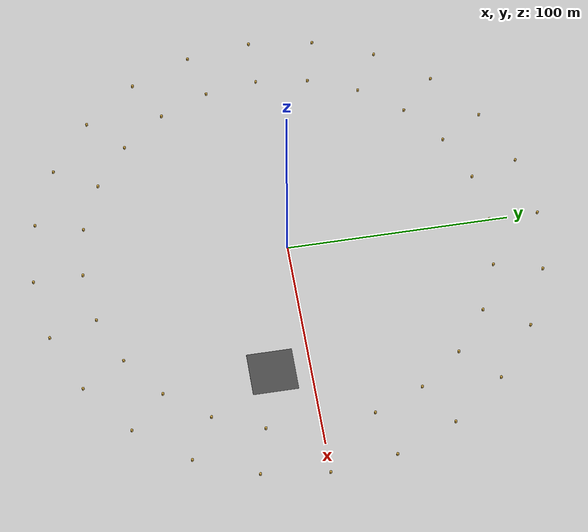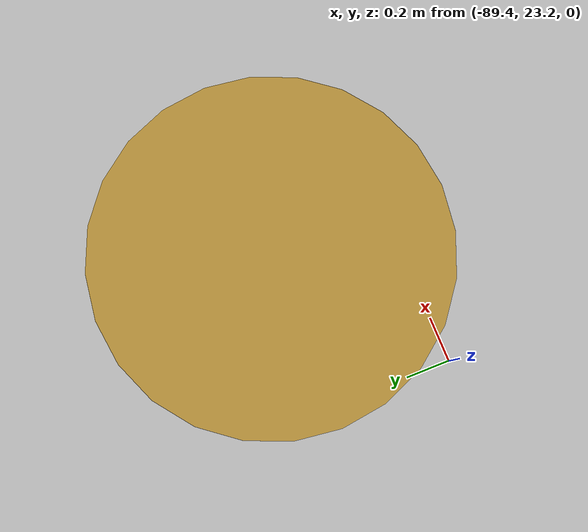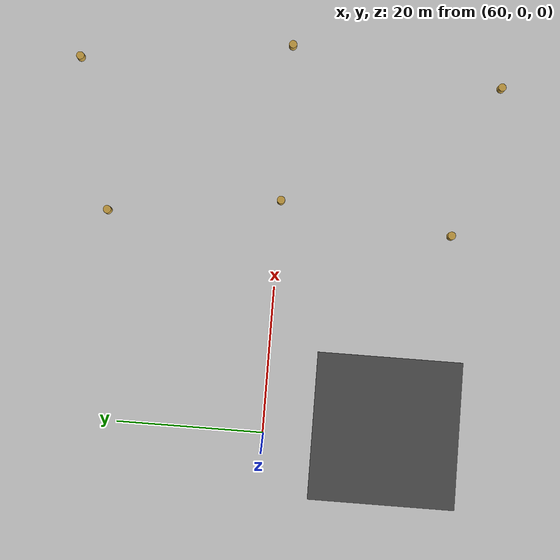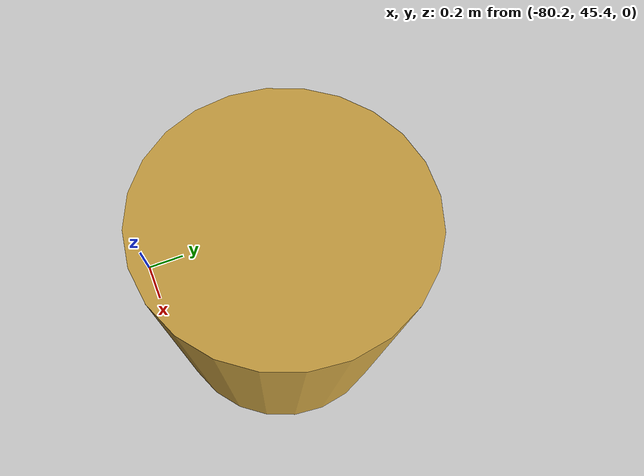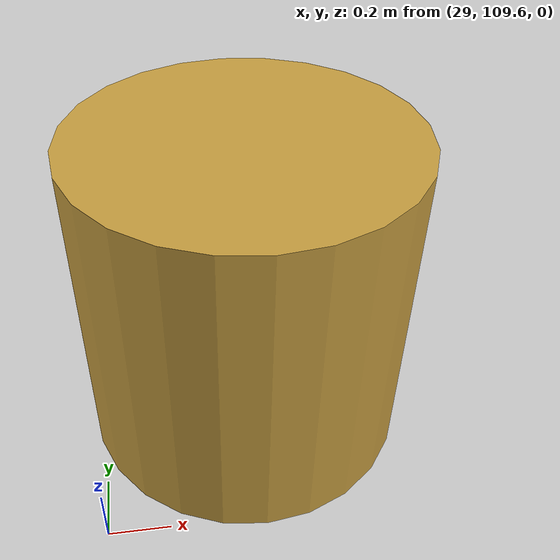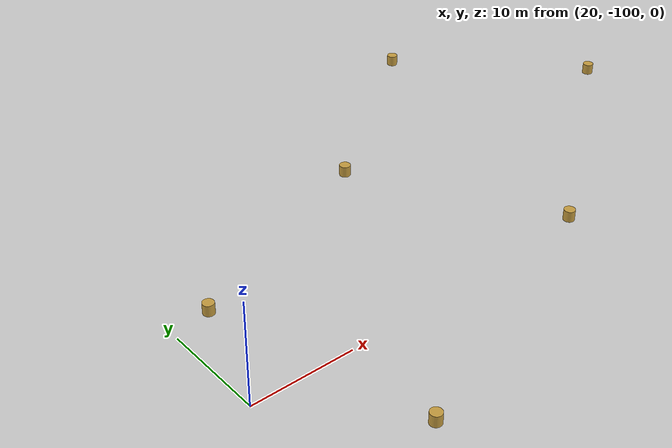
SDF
<sdf version="1.6">
 <world name="default">
  <scene>
   <ambient>0.45 0.45 0.50 1</ambient>
   <background>0.55 0.78 0.98 1</background>
   <shadows>true</shadows>
   <sky>
    <clouds>
     <speed>4</speed>
     <direction>1.2</direction>
     <humidity>0.45</humidity>
     <mean_size>0.55</mean_size>
     <ambient>0.85 0.85 0.85 1</ambient>
    </clouds>
   </sky>
  </scene>
  <light name="sun" type="directional">
   <pose>0 0 50 0 0 0</pose>
   <diffuse>1.00 0.93 0.80 1</diffuse>
   <specular>0.45 0.45 0.40 1</specular>
   <attenuation>
    <range>1000</range>
    <constant>0.9</constant>
    <linear>0.01</linear>
    <quadratic>0.001</quadratic>
   </attenuation>
   <direction>-0.45 0.25 -0.85</direction>
  </light>
  <include><uri>model://ground_plane</uri></include>
  <model name="haybale_in_00">
   <static>true</static>
   <pose>92.00 0.00 0.55 0 0 0</pose>
   <link name="link">
    <collision name="col">
     <geometry><cylinder><radius>0.55</radius><length>1.1</length></cylinder></geometry>
    </collision>
    <visual name="vis">
     <geometry><cylinder><radius>0.55</radius><length>1.1</length></cylinder></geometry>
     <material>
      <ambient>0.45 0.35 0.12 1</ambient>
      <diffuse>0.78 0.62 0.25 1</diffuse>
      <specular>0.1 0.1 0.05 1</specular>
     </material>
    </visual>
   </link>
  </model>
  <model name="haybale_out_00">
   <static>true</static>
   <pose>114.00 0.00 0.55 0 0 0</pose>
   <link name="link">
    <collision name="col">
     <geometry><cylinder><radius>0.55</radius><length>1.1</length></cylinder></geometry>
    </collision>
    <visual name="vis">
     <geometry><cylinder><radius>0.55</radius><length>1.1</length></cylinder></geometry>
     <material>
      <ambient>0.45 0.35 0.12 1</ambient>
      <diffuse>0.78 0.62 0.25 1</diffuse>
      <specular>0.1 0.1 0.05 1</specular>
     </material>
    </visual>
   </link>
  </model>
  <model name="haybale_in_01">
   <static>true</static>
   <pose>88.87 23.81 0.55 0 0 0</pose>
   <link name="link">
    <collision name="col">
     <geometry><cylinder><radius>0.55</radius><length>1.1</length></cylinder></geometry>
    </collision>
    <visual name="vis">
     <geometry><cylinder><radius>0.55</radius><length>1.1</length></cylinder></geometry>
     <material>
      <ambient>0.45 0.35 0.12 1</ambient>
      <diffuse>0.78 0.62 0.25 1</diffuse>
      <specular>0.1 0.1 0.05 1</specular>
     </material>
    </visual>
   </link>
  </model>
  <model name="haybale_out_01">
   <static>true</static>
   <pose>110.12 29.51 0.55 0 0 0</pose>
   <link name="link">
    <collision name="col">
     <geometry><cylinder><radius>0.55</radius><length>1.1</length></cylinder></geometry>
    </collision>
    <visual name="vis">
     <geometry><cylinder><radius>0.55</radius><length>1.1</length></cylinder></geometry>
     <material>
      <ambient>0.45 0.35 0.12 1</ambient>
      <diffuse>0.78 0.62 0.25 1</diffuse>
      <specular>0.1 0.1 0.05 1</specular>
     </material>
    </visual>
   </link>
  </model>
  <model name="haybale_in_02">
   <static>true</static>
   <pose>79.67 46.00 0.55 0 0 0</pose>
   <link name="link">
    <collision name="col">
     <geometry><cylinder><radius>0.55</radius><length>1.1</length></cylinder></geometry>
    </collision>
    <visual name="vis">
     <geometry><cylinder><radius>0.55</radius><length>1.1</length></cylinder></geometry>
     <material>
      <ambient>0.45 0.35 0.12 1</ambient>
      <diffuse>0.78 0.62 0.25 1</diffuse>
      <specular>0.1 0.1 0.05 1</specular>
     </material>
    </visual>
   </link>
  </model>
  <model name="haybale_out_02">
   <static>true</static>
   <pose>98.73 57.00 0.55 0 0 0</pose>
   <link name="link">
    <collision name="col">
     <geometry><cylinder><radius>0.55</radius><length>1.1</length></cylinder></geometry>
    </collision>
    <visual name="vis">
     <geometry><cylinder><radius>0.55</radius><length>1.1</length></cylinder></geometry>
     <material>
      <ambient>0.45 0.35 0.12 1</ambient>
      <diffuse>0.78 0.62 0.25 1</diffuse>
      <specular>0.1 0.1 0.05 1</specular>
     </material>
    </visual>
   </link>
  </model>
  <model name="haybale_in_03">
   <static>true</static>
   <pose>65.05 65.05 0.55 0 0 0</pose>
   <link name="link">
    <collision name="col">
     <geometry><cylinder><radius>0.55</radius><length>1.1</length></cylinder></geometry>
    </collision>
    <visual name="vis">
     <geometry><cylinder><radius>0.55</radius><length>1.1</length></cylinder></geometry>
     <material>
      <ambient>0.45 0.35 0.12 1</ambient>
      <diffuse>0.78 0.62 0.25 1</diffuse>
      <specular>0.1 0.1 0.05 1</specular>
     </material>
    </visual>
   </link>
  </model>
  <model name="haybale_out_03">
   <static>true</static>
   <pose>80.61 80.61 0.55 0 0 0</pose>
   <link name="link">
    <collision name="col">
     <geometry><cylinder><radius>0.55</radius><length>1.1</length></cylinder></geometry>
    </collision>
    <visual name="vis">
     <geometry><cylinder><radius>0.55</radius><length>1.1</length></cylinder></geometry>
     <material>
      <ambient>0.45 0.35 0.12 1</ambient>
      <diffuse>0.78 0.62 0.25 1</diffuse>
      <specular>0.1 0.1 0.05 1</specular>
     </material>
    </visual>
   </link>
  </model>
  <model name="haybale_in_04">
   <static>true</static>
   <pose>46.00 79.67 0.55 0 0 0</pose>
   <link name="link">
    <collision name="col">
     <geometry><cylinder><radius>0.55</radius><length>1.1</length></cylinder></geometry>
    </collision>
    <visual name="vis">
     <geometry><cylinder><radius>0.55</radius><length>1.1</length></cylinder></geometry>
     <material>
      <ambient>0.45 0.35 0.12 1</ambient>
      <diffuse>0.78 0.62 0.25 1</diffuse>
      <specular>0.1 0.1 0.05 1</specular>
     </material>
    </visual>
   </link>
  </model>
  <model name="haybale_out_04">
   <static>true</static>
   <pose>57.00 98.73 0.55 0 0 0</pose>
   <link name="link">
    <collision name="col">
     <geometry><cylinder><radius>0.55</radius><length>1.1</length></cylinder></geometry>
    </collision>
    <visual name="vis">
     <geometry><cylinder><radius>0.55</radius><length>1.1</length></cylinder></geometry>
     <material>
      <ambient>0.45 0.35 0.12 1</ambient>
      <diffuse>0.78 0.62 0.25 1</diffuse>
      <specular>0.1 0.1 0.05 1</specular>
     </material>
    </visual>
   </link>
  </model>
  <model name="haybale_in_05">
   <static>true</static>
   <pose>23.81 88.87 0.55 0 0 0</pose>
   <link name="link">
    <collision name="col">
     <geometry><cylinder><radius>0.55</radius><length>1.1</length></cylinder></geometry>
    </collision>
    <visual name="vis">
     <geometry><cylinder><radius>0.55</radius><length>1.1</length></cylinder></geometry>
     <material>
      <ambient>0.45 0.35 0.12 1</ambient>
      <diffuse>0.78 0.62 0.25 1</diffuse>
      <specular>0.1 0.1 0.05 1</specular>
     </material>
    </visual>
   </link>
  </model>
  <model name="haybale_out_05">
   <static>true</static>
   <pose>29.51 110.12 0.55 0 0 0</pose>
   <link name="link">
    <collision name="col">
     <geometry><cylinder><radius>0.55</radius><length>1.1</length></cylinder></geometry>
    </collision>
    <visual name="vis">
     <geometry><cylinder><radius>0.55</radius><length>1.1</length></cylinder></geometry>
     <material>
      <ambient>0.45 0.35 0.12 1</ambient>
      <diffuse>0.78 0.62 0.25 1</diffuse>
      <specular>0.1 0.1 0.05 1</specular>
     </material>
    </visual>
   </link>
  </model>
  <model name="haybale_in_06">
   <static>true</static>
   <pose>0.00 92.00 0.55 0 0 0</pose>
   <link name="link">
    <collision name="col">
     <geometry><cylinder><radius>0.55</radius><length>1.1</length></cylinder></geometry>
    </collision>
    <visual name="vis">
     <geometry><cylinder><radius>0.55</radius><length>1.1</length></cylinder></geometry>
     <material>
      <ambient>0.45 0.35 0.12 1</ambient>
      <diffuse>0.78 0.62 0.25 1</diffuse>
      <specular>0.1 0.1 0.05 1</specular>
     </material>
    </visual>
   </link>
  </model>
  <model name="haybale_out_06">
   <static>true</static>
   <pose>0.00 114.00 0.55 0 0 0</pose>
   <link name="link">
    <collision name="col">
     <geometry><cylinder><radius>0.55</radius><length>1.1</length></cylinder></geometry>
    </collision>
    <visual name="vis">
     <geometry><cylinder><radius>0.55</radius><length>1.1</length></cylinder></geometry>
     <material>
      <ambient>0.45 0.35 0.12 1</ambient>
      <diffuse>0.78 0.62 0.25 1</diffuse>
      <specular>0.1 0.1 0.05 1</specular>
     </material>
    </visual>
   </link>
  </model>
  <model name="haybale_in_07">
   <static>true</static>
   <pose>-23.81 88.87 0.55 0 0 0</pose>
   <link name="link">
    <collision name="col">
     <geometry><cylinder><radius>0.55</radius><length>1.1</length></cylinder></geometry>
    </collision>
    <visual name="vis">
     <geometry><cylinder><radius>0.55</radius><length>1.1</length></cylinder></geometry>
     <material>
      <ambient>0.45 0.35 0.12 1</ambient>
      <diffuse>0.78 0.62 0.25 1</diffuse>
      <specular>0.1 0.1 0.05 1</specular>
     </material>
    </visual>
   </link>
  </model>
  <model name="haybale_out_07">
   <static>true</static>
   <pose>-29.51 110.12 0.55 0 0 0</pose>
   <link name="link">
    <collision name="col">
     <geometry><cylinder><radius>0.55</radius><length>1.1</length></cylinder></geometry>
    </collision>
    <visual name="vis">
     <geometry><cylinder><radius>0.55</radius><length>1.1</length></cylinder></geometry>
     <material>
      <ambient>0.45 0.35 0.12 1</ambient>
      <diffuse>0.78 0.62 0.25 1</diffuse>
      <specular>0.1 0.1 0.05 1</specular>
     </material>
    </visual>
   </link>
  </model>
  <model name="haybale_in_08">
   <static>true</static>
   <pose>-46.00 79.67 0.55 0 0 0</pose>
   <link name="link">
    <collision name="col">
     <geometry><cylinder><radius>0.55</radius><length>1.1</length></cylinder></geometry>
    </collision>
    <visual name="vis">
     <geometry><cylinder><radius>0.55</radius><length>1.1</length></cylinder></geometry>
     <material>
      <ambient>0.45 0.35 0.12 1</ambient>
      <diffuse>0.78 0.62 0.25 1</diffuse>
      <specular>0.1 0.1 0.05 1</specular>
     </material>
    </visual>
   </link>
  </model>
  <model name="haybale_out_08">
   <static>true</static>
   <pose>-57.00 98.73 0.55 0 0 0</pose>
   <link name="link">
    <collision name="col">
     <geometry><cylinder><radius>0.55</radius><length>1.1</length></cylinder></geometry>
    </collision>
    <visual name="vis">
     <geometry><cylinder><radius>0.55</radius><length>1.1</length></cylinder></geometry>
     <material>
      <ambient>0.45 0.35 0.12 1</ambient>
      <diffuse>0.78 0.62 0.25 1</diffuse>
      <specular>0.1 0.1 0.05 1</specular>
     </material>
    </visual>
   </link>
  </model>
  <model name="haybale_in_09">
   <static>true</static>
   <pose>-65.05 65.05 0.55 0 0 0</pose>
   <link name="link">
    <collision name="col">
     <geometry><cylinder><radius>0.55</radius><length>1.1</length></cylinder></geometry>
    </collision>
    <visual name="vis">
     <geometry><cylinder><radius>0.55</radius><length>1.1</length></cylinder></geometry>
     <material>
      <ambient>0.45 0.35 0.12 1</ambient>
      <diffuse>0.78 0.62 0.25 1</diffuse>
      <specular>0.1 0.1 0.05 1</specular>
     </material>
    </visual>
   </link>
  </model>
  <model name="haybale_out_09">
   <static>true</static>
   <pose>-80.61 80.61 0.55 0 0 0</pose>
   <link name="link">
    <collision name="col">
     <geometry><cylinder><radius>0.55</radius><length>1.1</length></cylinder></geometry>
    </collision>
    <visual name="vis">
     <geometry><cylinder><radius>0.55</radius><length>1.1</length></cylinder></geometry>
     <material>
      <ambient>0.45 0.35 0.12 1</ambient>
      <diffuse>0.78 0.62 0.25 1</diffuse>
      <specular>0.1 0.1 0.05 1</specular>
     </material>
    </visual>
   </link>
  </model>
  <model name="haybale_in_10">
   <static>true</static>
   <pose>-79.67 46.00 0.55 0 0 0</pose>
   <link name="link">
    <collision name="col">
     <geometry><cylinder><radius>0.55</radius><length>1.1</length></cylinder></geometry>
    </collision>
    <visual name="vis">
     <geometry><cylinder><radius>0.55</radius><length>1.1</length></cylinder></geometry>
     <material>
      <ambient>0.45 0.35 0.12 1</ambient>
      <diffuse>0.78 0.62 0.25 1</diffuse>
      <specular>0.1 0.1 0.05 1</specular>
     </material>
    </visual>
   </link>
  </model>
  <model name="haybale_out_10">
   <static>true</static>
   <pose>-98.73 57.00 0.55 0 0 0</pose>
   <link name="link">
    <collision name="col">
     <geometry><cylinder><radius>0.55</radius><length>1.1</length></cylinder></geometry>
    </collision>
    <visual name="vis">
     <geometry><cylinder><radius>0.55</radius><length>1.1</length></cylinder></geometry>
     <material>
      <ambient>0.45 0.35 0.12 1</ambient>
      <diffuse>0.78 0.62 0.25 1</diffuse>
      <specular>0.1 0.1 0.05 1</specular>
     </material>
    </visual>
   </link>
  </model>
  <model name="haybale_in_11">
   <static>true</static>
   <pose>-88.87 23.81 0.55 0 0 0</pose>
   <link name="link">
    <collision name="col">
     <geometry><cylinder><radius>0.55</radius><length>1.1</length></cylinder></geometry>
    </collision>
    <visual name="vis">
     <geometry><cylinder><radius>0.55</radius><length>1.1</length></cylinder></geometry>
     <material>
      <ambient>0.45 0.35 0.12 1</ambient>
      <diffuse>0.78 0.62 0.25 1</diffuse>
      <specular>0.1 0.1 0.05 1</specular>
     </material>
    </visual>
   </link>
  </model>
  <model name="haybale_out_11">
   <static>true</static>
   <pose>-110.12 29.51 0.55 0 0 0</pose>
   <link name="link">
    <collision name="col">
     <geometry><cylinder><radius>0.55</radius><length>1.1</length></cylinder></geometry>
    </collision>
    <visual name="vis">
     <geometry><cylinder><radius>0.55</radius><length>1.1</length></cylinder></geometry>
     <material>
      <ambient>0.45 0.35 0.12 1</ambient>
      <diffuse>0.78 0.62 0.25 1</diffuse>
      <specular>0.1 0.1 0.05 1</specular>
     </material>
    </visual>
   </link>
  </model>
  <model name="haybale_in_12">
   <static>true</static>
   <pose>-92.00 0.00 0.55 0 0 0</pose>
   <link name="link">
    <collision name="col">
     <geometry><cylinder><radius>0.55</radius><length>1.1</length></cylinder></geometry>
    </collision>
    <visual name="vis">
     <geometry><cylinder><radius>0.55</radius><length>1.1</length></cylinder></geometry>
     <material>
      <ambient>0.45 0.35 0.12 1</ambient>
      <diffuse>0.78 0.62 0.25 1</diffuse>
      <specular>0.1 0.1 0.05 1</specular>
     </material>
    </visual>
   </link>
  </model>
  <model name="haybale_out_12">
   <static>true</static>
   <pose>-114.00 0.00 0.55 0 0 0</pose>
   <link name="link">
    <collision name="col">
     <geometry><cylinder><radius>0.55</radius><length>1.1</length></cylinder></geometry>
    </collision>
    <visual name="vis">
     <geometry><cylinder><radius>0.55</radius><length>1.1</length></cylinder></geometry>
     <material>
      <ambient>0.45 0.35 0.12 1</ambient>
      <diffuse>0.78 0.62 0.25 1</diffuse>
      <specular>0.1 0.1 0.05 1</specular>
     </material>
    </visual>
   </link>
  </model>
  <model name="haybale_in_13">
   <static>true</static>
   <pose>-88.87 -23.81 0.55 0 0 0</pose>
   <link name="link">
    <collision name="col">
     <geometry><cylinder><radius>0.55</radius><length>1.1</length></cylinder></geometry>
    </collision>
    <visual name="vis">
     <geometry><cylinder><radius>0.55</radius><length>1.1</length></cylinder></geometry>
     <material>
      <ambient>0.45 0.35 0.12 1</ambient>
      <diffuse>0.78 0.62 0.25 1</diffuse>
      <specular>0.1 0.1 0.05 1</specular>
     </material>
    </visual>
   </link>
  </model>
  <model name="haybale_out_13">
   <static>true</static>
   <pose>-110.12 -29.51 0.55 0 0 0</pose>
   <link name="link">
    <collision name="col">
     <geometry><cylinder><radius>0.55</radius><length>1.1</length></cylinder></geometry>
    </collision>
    <visual name="vis">
     <geometry><cylinder><radius>0.55</radius><length>1.1</length></cylinder></geometry>
     <material>
      <ambient>0.45 0.35 0.12 1</ambient>
      <diffuse>0.78 0.62 0.25 1</diffuse>
      <specular>0.1 0.1 0.05 1</specular>
     </material>
    </visual>
   </link>
  </model>
  <model name="haybale_in_14">
   <static>true</static>
   <pose>-79.67 -46.00 0.55 0 0 0</pose>
   <link name="link">
    <collision name="col">
     <geometry><cylinder><radius>0.55</radius><length>1.1</length></cylinder></geometry>
    </collision>
    <visual name="vis">
     <geometry><cylinder><radius>0.55</radius><length>1.1</length></cylinder></geometry>
     <material>
      <ambient>0.45 0.35 0.12 1</ambient>
      <diffuse>0.78 0.62 0.25 1</diffuse>
      <specular>0.1 0.1 0.05 1</specular>
     </material>
    </visual>
   </link>
  </model>
  <model name="haybale_out_14">
   <static>true</static>
   <pose>-98.73 -57.00 0.55 0 0 0</pose>
   <link name="link">
    <collision name="col">
     <geometry><cylinder><radius>0.55</radius><length>1.1</length></cylinder></geometry>
    </collision>
    <visual name="vis">
     <geometry><cylinder><radius>0.55</radius><length>1.1</length></cylinder></geometry>
     <material>
      <ambient>0.45 0.35 0.12 1</ambient>
      <diffuse>0.78 0.62 0.25 1</diffuse>
      <specular>0.1 0.1 0.05 1</specular>
     </material>
    </visual>
   </link>
  </model>
  <model name="haybale_in_15">
   <static>true</static>
   <pose>-65.05 -65.05 0.55 0 0 0</pose>
   <link name="link">
    <collision name="col">
     <geometry><cylinder><radius>0.55</radius><length>1.1</length></cylinder></geometry>
    </collision>
    <visual name="vis">
     <geometry><cylinder><radius>0.55</radius><length>1.1</length></cylinder></geometry>
     <material>
      <ambient>0.45 0.35 0.12 1</ambient>
      <diffuse>0.78 0.62 0.25 1</diffuse>
      <specular>0.1 0.1 0.05 1</specular>
     </material>
    </visual>
   </link>
  </model>
  <model name="haybale_out_15">
   <static>true</static>
   <pose>-80.61 -80.61 0.55 0 0 0</pose>
   <link name="link">
    <collision name="col">
     <geometry><cylinder><radius>0.55</radius><length>1.1</length></cylinder></geometry>
    </collision>
    <visual name="vis">
     <geometry><cylinder><radius>0.55</radius><length>1.1</length></cylinder></geometry>
     <material>
      <ambient>0.45 0.35 0.12 1</ambient>
      <diffuse>0.78 0.62 0.25 1</diffuse>
      <specular>0.1 0.1 0.05 1</specular>
     </material>
    </visual>
   </link>
  </model>
  <model name="haybale_in_16">
   <static>true</static>
   <pose>-46.00 -79.67 0.55 0 0 0</pose>
   <link name="link">
    <collision name="col">
     <geometry><cylinder><radius>0.55</radius><length>1.1</length></cylinder></geometry>
    </collision>
    <visual name="vis">
     <geometry><cylinder><radius>0.55</radius><length>1.1</length></cylinder></geometry>
     <material>
      <ambient>0.45 0.35 0.12 1</ambient>
      <diffuse>0.78 0.62 0.25 1</diffuse>
      <specular>0.1 0.1 0.05 1</specular>
     </material>
    </visual>
   </link>
  </model>
  <model name="haybale_out_16">
   <static>true</static>
   <pose>-57.00 -98.73 0.55 0 0 0</pose>
   <link name="link">
    <collision name="col">
     <geometry><cylinder><radius>0.55</radius><length>1.1</length></cylinder></geometry>
    </collision>
    <visual name="vis">
     <geometry><cylinder><radius>0.55</radius><length>1.1</length></cylinder></geometry>
     <material>
      <ambient>0.45 0.35 0.12 1</ambient>
      <diffuse>0.78 0.62 0.25 1</diffuse>
      <specular>0.1 0.1 0.05 1</specular>
     </material>
    </visual>
   </link>
  </model>
  <model name="haybale_in_17">
   <static>true</static>
   <pose>-23.81 -88.87 0.55 0 0 0</pose>
   <link name="link">
    <collision name="col">
     <geometry><cylinder><radius>0.55</radius><length>1.1</length></cylinder></geometry>
    </collision>
    <visual name="vis">
     <geometry><cylinder><radius>0.55</radius><length>1.1</length></cylinder></geometry>
     <material>
      <ambient>0.45 0.35 0.12 1</ambient>
      <diffuse>0.78 0.62 0.25 1</diffuse>
      <specular>0.1 0.1 0.05 1</specular>
     </material>
    </visual>
   </link>
  </model>
  <model name="haybale_out_17">
   <static>true</static>
   <pose>-29.51 -110.12 0.55 0 0 0</pose>
   <link name="link">
    <collision name="col">
     <geometry><cylinder><radius>0.55</radius><length>1.1</length></cylinder></geometry>
    </collision>
    <visual name="vis">
     <geometry><cylinder><radius>0.55</radius><length>1.1</length></cylinder></geometry>
     <material>
      <ambient>0.45 0.35 0.12 1</ambient>
      <diffuse>0.78 0.62 0.25 1</diffuse>
      <specular>0.1 0.1 0.05 1</specular>
     </material>
    </visual>
   </link>
  </model>
  <model name="haybale_in_18">
   <static>true</static>
   <pose>-0.00 -92.00 0.55 0 0 0</pose>
   <link name="link">
    <collision name="col">
     <geometry><cylinder><radius>0.55</radius><length>1.1</length></cylinder></geometry>
    </collision>
    <visual name="vis">
     <geometry><cylinder><radius>0.55</radius><length>1.1</length></cylinder></geometry>
     <material>
      <ambient>0.45 0.35 0.12 1</ambient>
      <diffuse>0.78 0.62 0.25 1</diffuse>
      <specular>0.1 0.1 0.05 1</specular>
     </material>
    </visual>
   </link>
  </model>
  <model name="haybale_out_18">
   <static>true</static>
   <pose>-0.00 -114.00 0.55 0 0 0</pose>
   <link name="link">
    <collision name="col">
     <geometry><cylinder><radius>0.55</radius><length>1.1</length></cylinder></geometry>
    </collision>
    <visual name="vis">
     <geometry><cylinder><radius>0.55</radius><length>1.1</length></cylinder></geometry>
     <material>
      <ambient>0.45 0.35 0.12 1</ambient>
      <diffuse>0.78 0.62 0.25 1</diffuse>
      <specular>0.1 0.1 0.05 1</specular>
     </material>
    </visual>
   </link>
  </model>
  <model name="haybale_in_19">
   <static>true</static>
   <pose>23.81 -88.87 0.55 0 0 0</pose>
   <link name="link">
    <collision name="col">
     <geometry><cylinder><radius>0.55</radius><length>1.1</length></cylinder></geometry>
    </collision>
    <visual name="vis">
     <geometry><cylinder><radius>0.55</radius><length>1.1</length></cylinder></geometry>
     <material>
      <ambient>0.45 0.35 0.12 1</ambient>
      <diffuse>0.78 0.62 0.25 1</diffuse>
      <specular>0.1 0.1 0.05 1</specular>
     </material>
    </visual>
   </link>
  </model>
  <model name="haybale_out_19">
   <static>true</static>
   <pose>29.51 -110.12 0.55 0 0 0</pose>
   <link name="link">
    <collision name="col">
     <geometry><cylinder><radius>0.55</radius><length>1.1</length></cylinder></geometry>
    </collision>
    <visual name="vis">
     <geometry><cylinder><radius>0.55</radius><length>1.1</length></cylinder></geometry>
     <material>
      <ambient>0.45 0.35 0.12 1</ambient>
      <diffuse>0.78 0.62 0.25 1</diffuse>
      <specular>0.1 0.1 0.05 1</specular>
     </material>
    </visual>
   </link>
  </model>
  <model name="haybale_in_20">
   <static>true</static>
   <pose>46.00 -79.67 0.55 0 0 0</pose>
   <link name="link">
    <collision name="col">
     <geometry><cylinder><radius>0.55</radius><length>1.1</length></cylinder></geometry>
    </collision>
    <visual name="vis">
     <geometry><cylinder><radius>0.55</radius><length>1.1</length></cylinder></geometry>
     <material>
      <ambient>0.45 0.35 0.12 1</ambient>
      <diffuse>0.78 0.62 0.25 1</diffuse>
      <specular>0.1 0.1 0.05 1</specular>
     </material>
    </visual>
   </link>
  </model>
  <model name="haybale_out_20">
   <static>true</static>
   <pose>57.00 -98.73 0.55 0 0 0</pose>
   <link name="link">
    <collision name="col">
     <geometry><cylinder><radius>0.55</radius><length>1.1</length></cylinder></geometry>
    </collision>
    <visual name="vis">
     <geometry><cylinder><radius>0.55</radius><length>1.1</length></cylinder></geometry>
     <material>
      <ambient>0.45 0.35 0.12 1</ambient>
      <diffuse>0.78 0.62 0.25 1</diffuse>
      <specular>0.1 0.1 0.05 1</specular>
     </material>
    </visual>
   </link>
  </model>
  <model name="haybale_in_21">
   <static>true</static>
   <pose>65.05 -65.05 0.55 0 0 0</pose>
   <link name="link">
    <collision name="col">
     <geometry><cylinder><radius>0.55</radius><length>1.1</length></cylinder></geometry>
    </collision>
    <visual name="vis">
     <geometry><cylinder><radius>0.55</radius><length>1.1</length></cylinder></geometry>
     <material>
      <ambient>0.45 0.35 0.12 1</ambient>
      <diffuse>0.78 0.62 0.25 1</diffuse>
      <specular>0.1 0.1 0.05 1</specular>
     </material>
    </visual>
   </link>
  </model>
  <model name="haybale_out_21">
   <static>true</static>
   <pose>80.61 -80.61 0.55 0 0 0</pose>
   <link name="link">
    <collision name="col">
     <geometry><cylinder><radius>0.55</radius><length>1.1</length></cylinder></geometry>
    </collision>
    <visual name="vis">
     <geometry><cylinder><radius>0.55</radius><length>1.1</length></cylinder></geometry>
     <material>
      <ambient>0.45 0.35 0.12 1</ambient>
      <diffuse>0.78 0.62 0.25 1</diffuse>
      <specular>0.1 0.1 0.05 1</specular>
     </material>
    </visual>
   </link>
  </model>
  <model name="haybale_in_22">
   <static>true</static>
   <pose>79.67 -46.00 0.55 0 0 0</pose>
   <link name="link">
    <collision name="col">
     <geometry><cylinder><radius>0.55</radius><length>1.1</length></cylinder></geometry>
    </collision>
    <visual name="vis">
     <geometry><cylinder><radius>0.55</radius><length>1.1</length></cylinder></geometry>
     <material>
      <ambient>0.45 0.35 0.12 1</ambient>
      <diffuse>0.78 0.62 0.25 1</diffuse>
      <specular>0.1 0.1 0.05 1</specular>
     </material>
    </visual>
   </link>
  </model>
  <model name="haybale_out_22">
   <static>true</static>
   <pose>98.73 -57.00 0.55 0 0 0</pose>
   <link name="link">
    <collision name="col">
     <geometry><cylinder><radius>0.55</radius><length>1.1</length></cylinder></geometry>
    </collision>
    <visual name="vis">
     <geometry><cylinder><radius>0.55</radius><length>1.1</length></cylinder></geometry>
     <material>
      <ambient>0.45 0.35 0.12 1</ambient>
      <diffuse>0.78 0.62 0.25 1</diffuse>
      <specular>0.1 0.1 0.05 1</specular>
     </material>
    </visual>
   </link>
  </model>
  <model name="haybale_in_23">
   <static>true</static>
   <pose>88.87 -23.81 0.55 0 0 0</pose>
   <link name="link">
    <collision name="col">
     <geometry><cylinder><radius>0.55</radius><length>1.1</length></cylinder></geometry>
    </collision>
    <visual name="vis">
     <geometry><cylinder><radius>0.55</radius><length>1.1</length></cylinder></geometry>
     <material>
      <ambient>0.45 0.35 0.12 1</ambient>
      <diffuse>0.78 0.62 0.25 1</diffuse>
      <specular>0.1 0.1 0.05 1</specular>
     </material>
    </visual>
   </link>
  </model>
  <model name="haybale_out_23">
   <static>true</static>
   <pose>110.12 -29.51 0.55 0 0 0</pose>
   <link name="link">
    <collision name="col">
     <geometry><cylinder><radius>0.55</radius><length>1.1</length></cylinder></geometry>
    </collision>
    <visual name="vis">
     <geometry><cylinder><radius>0.55</radius><length>1.1</length></cylinder></geometry>
     <material>
      <ambient>0.45 0.35 0.12 1</ambient>
      <diffuse>0.78 0.62 0.25 1</diffuse>
      <specular>0.1 0.1 0.05 1</specular>
     </material>
    </visual>
   </link>
  </model>
  <model name="asphalt_plane_74">
   <static>true</static>
   <pose>61.581
        -16.664
        0
        0
        0
        0</pose>
   <link name="link">
    <visual name="visual">
     <geometry><box><size>20
                20
                0.05</size></box></geometry>
     <material>
      <script>
       <uri>model://asphalt_plane/materials/scripts</uri>
       <uri>model://asphalt_plane/materials/textures</uri>
       <name>vrc/asphalt</name>
      </script>
     </material>
    </visual>
   </link>
  </model>
 </world>
</sdf>
